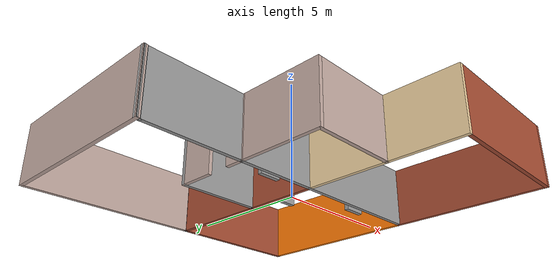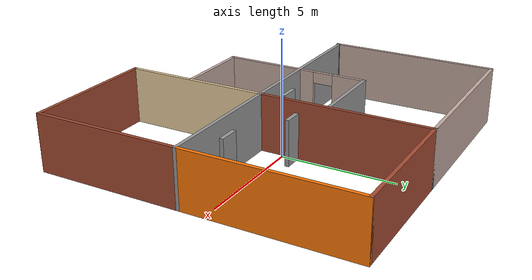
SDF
<?xml version='1.0'?>
<sdf version='1.6'>
  <model name='building-robot'>
    <pose frame=''>-1.00141 -0.595111 0 0 -0 0</pose>
    <link name='Door_1'>
      <collision name='Door_1_Collision'>
        <geometry>
          <box>
            <size>0.9 0.17 2</size>
          </box>
        </geometry>
        <pose frame=''>0 0 1 0 -0 0</pose>
      </collision>
      <visual name='Door_1_Visual'>
        <pose frame=''>0 0 1 0 -0 0</pose>
        <geometry>
          <box>
            <size>0.9 0.17 2</size>
          </box>
        </geometry>
        <material>
          <script>
            <uri>file://media/materials/scripts/gazebo.material</uri>
            <name>Gazebo/Grey</name>
          </script>
        </material>
      </visual>
      <pose frame=''>-1.01123 -0.198628 0 0 -0 0</pose>
    </link>
    <link name='Door_2'>
      <collision name='Door_2_Collision'>
        <geometry>
          <box>
            <size>0.9 0.17 2</size>
          </box>
        </geometry>
        <pose frame=''>0 0 1 0 -0 0</pose>
      </collision>
      <visual name='Door_2_Visual'>
        <pose frame=''>0 0 1 0 -0 0</pose>
        <geometry>
          <box>
            <size>0.9 0.17 2</size>
          </box>
        </geometry>
        <material>
          <script>
            <uri>file://media/materials/scripts/gazebo.material</uri>
            <name>Gazebo/Grey</name>
          </script>
        </material>
      </visual>
      <pose frame=''>1.24864 1.20034 0 0 -0 0</pose>
    </link>
    <link name='Door_3'>
      <collision name='Door_3_Collision'>
        <geometry>
          <box>
            <size>0.9 0.17 2</size>
          </box>
        </geometry>
        <pose frame=''>0 0 1 0 -0 0</pose>
      </collision>
      <visual name='Door_3_Visual'>
        <pose frame=''>0 0 1 0 -0 0</pose>
        <geometry>
          <box>
            <size>0.9 0.17 2</size>
          </box>
        </geometry>
        <material>
          <script>
            <uri>file://media/materials/scripts/gazebo.material</uri>
            <name>Gazebo/Grey</name>
          </script>
        </material>
      </visual>
      <pose frame=''>3.93896 -0.091015 0 0 -0 0</pose>
    </link>
    <link name='Wall_0'>
      <collision name='Wall_0_Collision'>
        <geometry>
          <box>
            <size>7.5 0.15 2.5</size>
          </box>
        </geometry>
        <pose frame=''>0 0 1.25 0 -0 0</pose>
      </collision>
      <visual name='Wall_0_Visual'>
        <pose frame=''>0 0 1.25 0 -0 0</pose>
        <geometry>
          <box>
            <size>7.5 0.15 2.5</size>
          </box>
        </geometry>
        <material>
          <script>
            <uri>file://media/materials/scripts/gazebo.material</uri>
            <name>Gazebo/Grey</name>
          </script>
          <ambient>0.760784 0.662745 0.627451 1</ambient>
        </material>
        <meta>
          <layer>0</layer>
        </meta>
      </visual>
      <pose frame=''>-2.87828 6.85 0 0 -0 0</pose>
    </link>
    <link name='Wall_1'>
      <collision name='Wall_1_Collision'>
        <geometry>
          <box>
            <size>0.16 0.15 2.5</size>
          </box>
        </geometry>
        <pose frame=''>0 0 1.25 0 -0 0</pose>
      </collision>
      <visual name='Wall_1_Visual'>
        <pose frame=''>0 0 1.25 0 -0 0</pose>
        <geometry>
          <box>
            <size>0.16 0.15 2.5</size>
          </box>
        </geometry>
        <material>
          <script>
            <uri>file://media/materials/scripts/gazebo.material</uri>
            <name>Gazebo/Grey</name>
          </script>
          <ambient>1 1 1 1</ambient>
        </material>
        <meta>
          <layer>0</layer>
        </meta>
      </visual>
      <pose frame=''>0.801724 6.85 0 0 -0 0</pose>
    </link>
    <link name='Wall_10'>
      <collision name='Wall_10_Collision'>
        <geometry>
          <box>
            <size>3.5 0.15 2.5</size>
          </box>
        </geometry>
        <pose frame=''>0 0 1.25 0 -0 0</pose>
      </collision>
      <visual name='Wall_10_Visual'>
        <pose frame=''>0 0 1.25 0 -0 0</pose>
        <geometry>
          <box>
            <size>3.5 0.15 2.5</size>
          </box>
        </geometry>
        <material>
          <script>
            <uri>file://media/materials/scripts/gazebo.material</uri>
            <name>Gazebo/Grey</name>
          </script>
          <ambient>0.760784 0.662745 0.627451 1</ambient>
        </material>
        <meta>
          <layer>0</layer>
        </meta>
      </visual>
      <pose frame=''>-0.910617 -3.9045 0 0 -0 0</pose>
    </link>
    <link name='Wall_12'>
      <collision name='Wall_12_Collision'>
        <geometry>
          <box>
            <size>6.5 0.15 2.5</size>
          </box>
        </geometry>
        <pose frame=''>0 0 1.25 0 -0 0</pose>
      </collision>
      <visual name='Wall_12_Visual'>
        <pose frame=''>0 0 1.25 0 -0 0</pose>
        <geometry>
          <box>
            <size>6.5 0.15 2.5</size>
          </box>
        </geometry>
        <material>
          <script>
            <uri>file://media/materials/scripts/gazebo.material</uri>
            <name>Gazebo/Grey</name>
          </script>
          <ambient>0.921569 0.807843 0.615686 1</ambient>
        </material>
        <meta>
          <layer>0</layer>
        </meta>
      </visual>
      <pose frame=''>0.806724 -3.675 0 0 0 -1.5708</pose>
    </link>
    <link name='Wall_13'>
      <collision name='Wall_13_Collision'>
        <geometry>
          <box>
            <size>6 0.15 2.5</size>
          </box>
        </geometry>
        <pose frame=''>0 0 1.25 0 -0 0</pose>
      </collision>
      <visual name='Wall_13_Visual'>
        <pose frame=''>0 0 1.25 0 -0 0</pose>
        <geometry>
          <box>
            <size>6 0.15 2.5</size>
          </box>
        </geometry>
        <material>
          <script>
            <uri>file://media/materials/scripts/gazebo.material</uri>
            <name>Gazebo/Bricks</name>
          </script>
          <ambient>0.996078 0.47451 0.0196078 1</ambient>
        </material>
        <meta>
          <layer>0</layer>
        </meta>
      </visual>
      <pose frame=''>3.73172 -6.85 0 0 -0 0</pose>
    </link>
    <link name='Wall_14'>
      <collision name='Wall_14_Collision'>
        <geometry>
          <box>
            <size>6.5 0.15 2.5</size>
          </box>
        </geometry>
        <pose frame=''>0 0 1.25 0 -0 0</pose>
      </collision>
      <visual name='Wall_14_Visual'>
        <pose frame=''>0 0 1.25 0 -0 0</pose>
        <geometry>
          <box>
            <size>6.5 0.15 2.5</size>
          </box>
        </geometry>
        <material>
          <script>
            <uri>file://media/materials/scripts/gazebo.material</uri>
            <name>Gazebo/Bricks</name>
          </script>
          <ambient>1 0.764706 0.305882 1</ambient>
        </material>
        <meta>
          <layer>0</layer>
        </meta>
      </visual>
      <pose frame=''>6.65672 -3.675 0 0 -0 1.5708</pose>
    </link>
    <link name='Wall_15'>
      <collision name='Wall_15_Collision'>
        <geometry>
          <box>
            <size>6 0.15 2.5</size>
          </box>
        </geometry>
        <pose frame=''>0 0 1.25 0 -0 0</pose>
      </collision>
      <visual name='Wall_15_Visual'>
        <pose frame=''>0 0 1.25 0 -0 0</pose>
        <geometry>
          <box>
            <size>6 0.15 2.5</size>
          </box>
        </geometry>
        <material>
          <script>
            <uri>file://media/materials/scripts/gazebo.material</uri>
            <name>Gazebo/Grey</name>
          </script>
          <ambient>1 1 1 1</ambient>
        </material>
        <meta>
          <layer>0</layer>
        </meta>
      </visual>
      <pose frame=''>3.73172 -0.5 0 0 -0 3.14159</pose>
    </link>
    <link name='Wall_18'>
      <collision name='Wall_18_Collision'>
        <geometry>
          <box>
            <size>6 0.15 2.5</size>
          </box>
        </geometry>
        <pose frame=''>0 0 1.25 0 -0 0</pose>
      </collision>
      <visual name='Wall_18_Visual'>
        <pose frame=''>0 0 1.25 0 -0 0</pose>
        <geometry>
          <box>
            <size>6 0.15 2.5</size>
          </box>
        </geometry>
        <material>
          <script>
            <uri>file://media/materials/scripts/gazebo.material</uri>
            <name>Gazebo/Bricks</name>
          </script>
          <ambient>1 0.764706 0.305882 1</ambient>
        </material>
        <meta>
          <layer>0</layer>
        </meta>
      </visual>
      <pose frame=''>3.73172 6.85 0 0 -0 0</pose>
    </link>
    <link name='Wall_19'>
      <collision name='Wall_19_Collision'>
        <geometry>
          <box>
            <size>7.5 0.15 2.5</size>
          </box>
        </geometry>
        <pose frame=''>0 0 1.25 0 -0 0</pose>
      </collision>
      <visual name='Wall_19_Visual'>
        <pose frame=''>0 0 1.25 0 -0 0</pose>
        <geometry>
          <box>
            <size>7.5 0.15 2.5</size>
          </box>
        </geometry>
        <material>
          <script>
            <uri>file://media/materials/scripts/gazebo.material</uri>
            <name>Gazebo/Grey</name>
          </script>
          <ambient>0.996078 0.47451 0.0196078 1</ambient>
        </material>
        <meta>
          <layer>0</layer>
        </meta>
      </visual>
      <pose frame=''>6.65672 3.175 0 0 0 -1.5708</pose>
    </link>
    <link name='Wall_2'>
      <collision name='Wall_2_Collision'>
        <geometry>
          <box>
            <size>7.5 0.15 2.5</size>
          </box>
        </geometry>
        <pose frame=''>0 0 1.25 0 -0 0</pose>
      </collision>
      <visual name='Wall_2_Visual'>
        <pose frame=''>0 0 1.25 0 -0 0</pose>
        <geometry>
          <box>
            <size>7.5 0.15 2.5</size>
          </box>
        </geometry>
        <material>
          <script>
            <uri>file://media/materials/scripts/gazebo.material</uri>
            <name>Gazebo/Bricks</name>
          </script>
          <ambient>0.921569 0.807843 0.615686 1</ambient>
        </material>
        <meta>
          <layer>0</layer>
        </meta>
      </visual>
      <pose frame=''>0.806724 3.175 0 0 0 -1.5708</pose>
    </link>
    <link name='Wall_3'>
      <collision name='Wall_3_Collision'>
        <geometry>
          <box>
            <size>7.5 0.15 2.5</size>
          </box>
        </geometry>
        <pose frame=''>0 0 1.25 0 -0 0</pose>
      </collision>
      <visual name='Wall_3_Visual'>
        <pose frame=''>0 0 1.25 0 -0 0</pose>
        <geometry>
          <box>
            <size>7.5 0.15 2.5</size>
          </box>
        </geometry>
        <material>
          <script>
            <uri>file://media/materials/scripts/gazebo.material</uri>
            <name>Gazebo/Grey</name>
          </script>
          <ambient>1 1 1 1</ambient>
        </material>
        <meta>
          <layer>0</layer>
        </meta>
      </visual>
      <pose frame=''>-2.86828 -0.5 0 0 -0 3.14159</pose>
    </link>
    <link name='Wall_4'>
      <collision name='Wall_4_Collision'>
        <geometry>
          <box>
            <size>0.25 0.15 2.5</size>
          </box>
        </geometry>
        <pose frame=''>0 0 1.25 0 -0 0</pose>
      </collision>
      <visual name='Wall_4_Visual'>
        <pose frame=''>0 0 1.25 0 -0 0</pose>
        <geometry>
          <box>
            <size>0.25 0.15 2.5</size>
          </box>
        </geometry>
        <material>
          <script>
            <uri>file://media/materials/scripts/gazebo.material</uri>
            <name>Gazebo/Grey</name>
          </script>
          <ambient>1 1 1 1</ambient>
        </material>
        <meta>
          <layer>0</layer>
        </meta>
      </visual>
      <pose frame=''>-6.59157 -0.512941 0 0 0 -2.87979</pose>
    </link>
    <link name='Wall_5'>
      <collision name='Wall_5_Collision'>
        <geometry>
          <box>
            <size>7.5 0.15 2.5</size>
          </box>
        </geometry>
        <pose frame=''>0 0 1.25 0 -0 0</pose>
      </collision>
      <visual name='Wall_5_Visual'>
        <pose frame=''>0 0 1.25 0 -0 0</pose>
        <geometry>
          <box>
            <size>7.5 0.15 2.5</size>
          </box>
        </geometry>
        <material>
          <script>
            <uri>file://media/materials/scripts/gazebo.material</uri>
            <name>Gazebo/Grey</name>
          </script>
          <ambient>0.760784 0.662745 0.627451 1</ambient>
        </material>
        <meta>
          <layer>0</layer>
        </meta>
      </visual>
      <pose frame=''>-6.63987 3.14912 0 0 -0 1.5708</pose>
    </link>
    <link name='Wall_7'>
      <collision name='Wall_7_Collision'>
        <geometry>
          <box>
            <size>3.5 0.15 2.5</size>
          </box>
        </geometry>
        <pose frame=''>0 0 1.25 0 -0 0</pose>
      </collision>
      <visual name='Wall_7_Visual'>
        <pose frame=''>0 0 1.25 0 -0 0</pose>
        <geometry>
          <box>
            <size>3.5 0.15 2.5</size>
          </box>
        </geometry>
        <material>
          <script>
            <uri>file://media/materials/scripts/gazebo.material</uri>
            <name>Gazebo/Grey</name>
          </script>
          <ambient>1 1 1 1</ambient>
        </material>
        <meta>
          <layer>0</layer>
        </meta>
      </visual>
      <pose frame=''>-0.910617 2.54549 0 0 -0 3.14159</pose>
    </link>
    <link name='Wall_8'>
      <pose frame=''>-2.58562 0.995494 0 0 0 -1.5708</pose>
      <visual name='Wall_8_Visual_0'>
        <pose frame=''>-0.870889 0 1.25 0 -0 0</pose>
        <geometry>
          <box>
            <size>1.50822 0.15 2.5</size>
          </box>
        </geometry>
        <material>
          <script>
            <uri>file://media/materials/scripts/gazebo.material</uri>
            <name>Gazebo/Grey</name>
          </script>
          <ambient>0.760784 0.662745 0.627451 1</ambient>
        </material>
        <meta>
          <layer>0</layer>
        </meta>
      </visual>
      <collision name='Wall_8_Collision_0'>
        <geometry>
          <box>
            <size>1.50822 0.15 2.5</size>
          </box>
        </geometry>
        <pose frame=''>-0.870889 0 1.25 0 -0 0</pose>
      </collision>
      <visual name='Wall_8_Visual_1'>
        <pose frame=''>1.20411 0 1.25 0 -0 0</pose>
        <geometry>
          <box>
            <size>0.841779 0.15 2.5</size>
          </box>
        </geometry>
        <material>
          <script>
            <uri>file://media/materials/scripts/gazebo.material</uri>
            <name>Gazebo/Grey</name>
          </script>
          <ambient>0.760784 0.662745 0.627451 1</ambient>
        </material>
        <meta>
          <layer>0</layer>
        </meta>
      </visual>
      <collision name='Wall_8_Collision_1'>
        <geometry>
          <box>
            <size>0.841779 0.15 2.5</size>
          </box>
        </geometry>
        <pose frame=''>1.20411 0 1.25 0 -0 0</pose>
      </collision>
      <visual name='Wall_8_Visual_2'>
        <pose frame=''>0.333221 0 2.25 0 -0 0</pose>
        <geometry>
          <box>
            <size>0.9 0.15 0.5</size>
          </box>
        </geometry>
        <material>
          <script>
            <uri>file://media/materials/scripts/gazebo.material</uri>
            <name>Gazebo/Grey</name>
          </script>
          <ambient>0.760784 0.662745 0.627451 1</ambient>
        </material>
        <meta>
          <layer>0</layer>
        </meta>
      </visual>
      <collision name='Wall_8_Collision_2'>
        <geometry>
          <box>
            <size>0.9 0.15 0.5</size>
          </box>
        </geometry>
        <pose frame=''>0.333221 0 2.25 0 -0 0</pose>
      </collision>
    </link>
    <link name='Wall_9'>
      <collision name='Wall_9_Collision'>
        <geometry>
          <box>
            <size>3.5 0.15 2.5</size>
          </box>
        </geometry>
        <pose frame=''>0 0 1.25 0 -0 0</pose>
      </collision>
      <visual name='Wall_9_Visual'>
        <pose frame=''>0 0 1.25 0 -0 0</pose>
        <geometry>
          <box>
            <size>3.5 0.15 2.5</size>
          </box>
        </geometry>
        <material>
          <script>
            <uri>file://media/materials/scripts/gazebo.material</uri>
            <name>Gazebo/Grey</name>
          </script>
          <ambient>0.760784 0.662745 0.627451 1</ambient>
        </material>
        <meta>
          <layer>0</layer>
        </meta>
      </visual>
      <pose frame=''>-2.58562 -2.22951 0 0 0 -1.5708</pose>
    </link>
    <static>1</static>
  </model>
</sdf>
